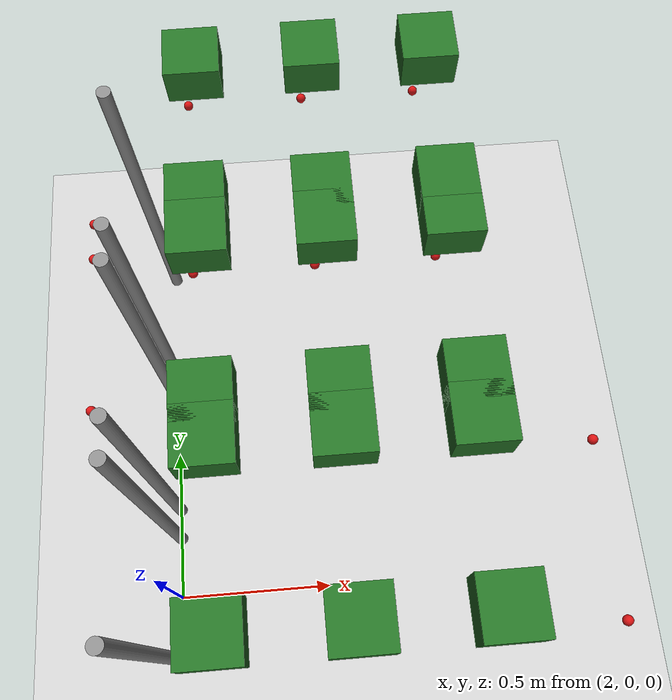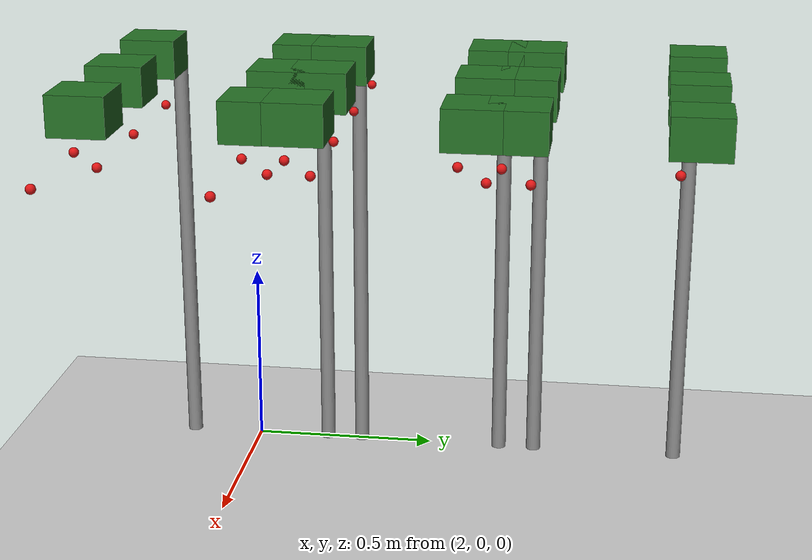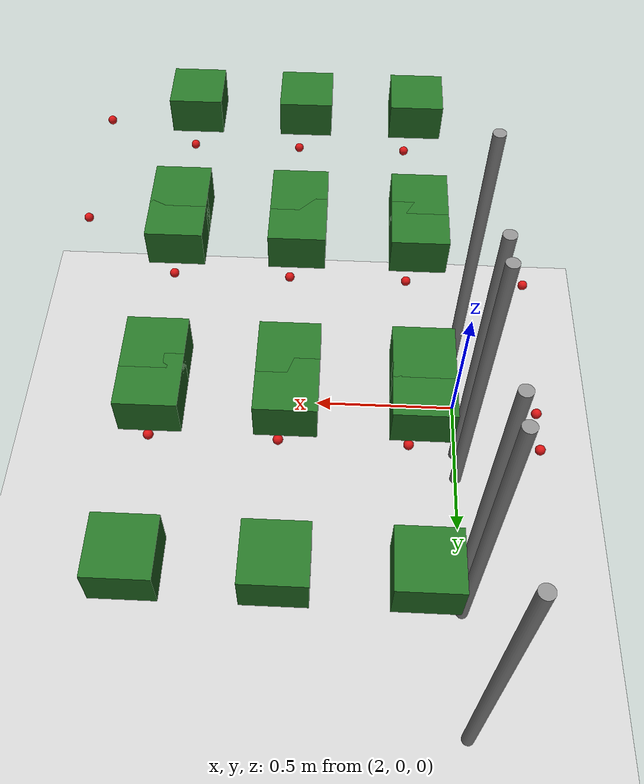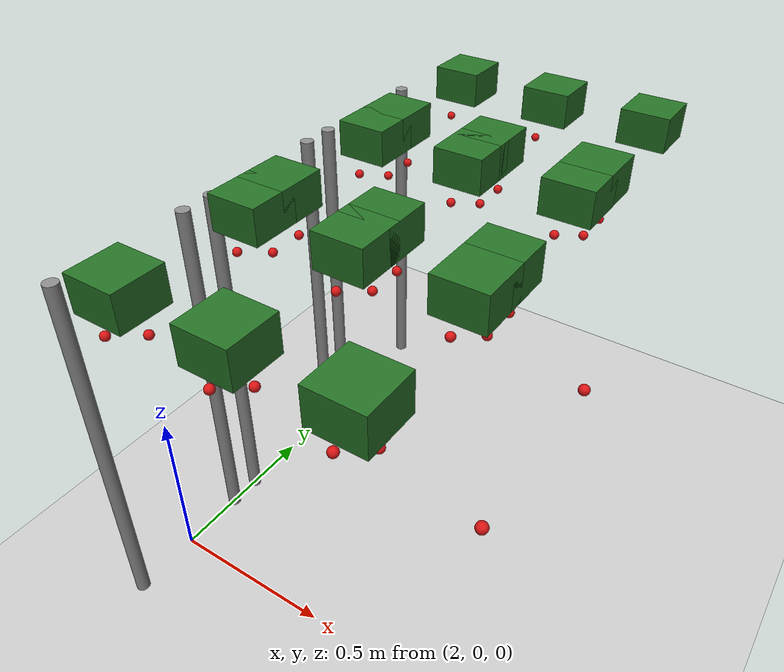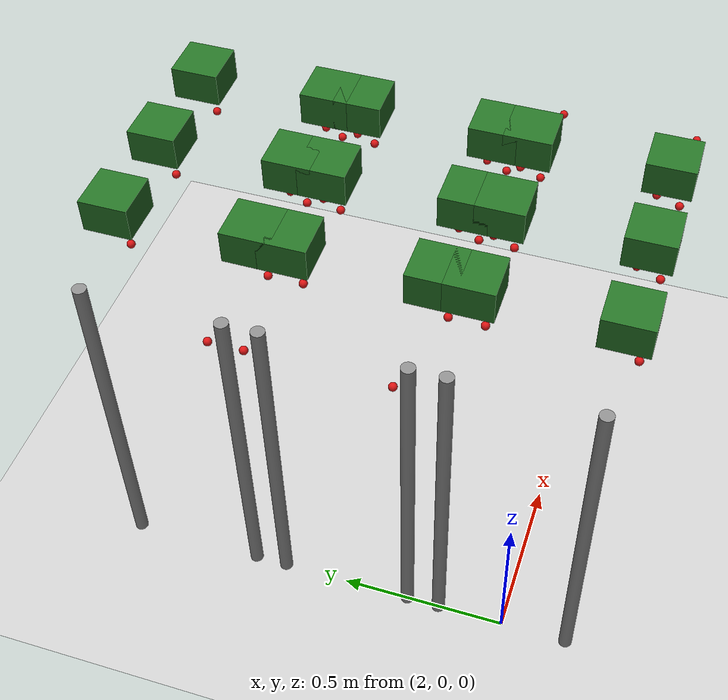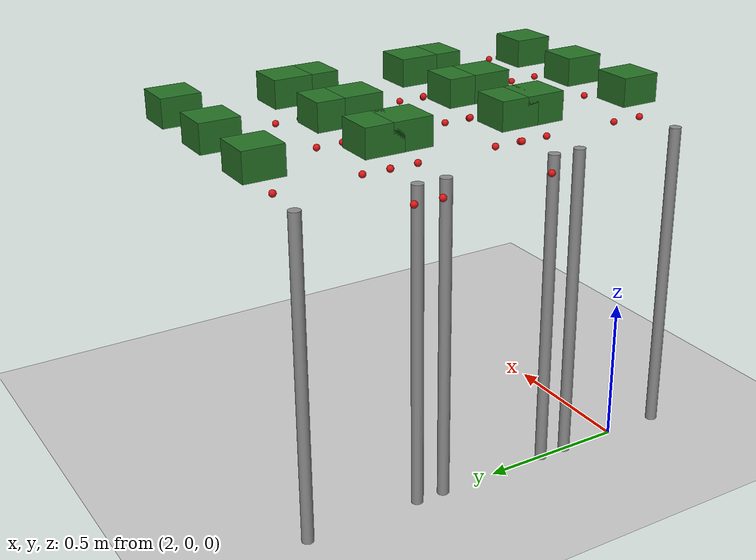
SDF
<sdf version="1.7">
 <world name="irish_polytunnel">
  <include><uri>model://sun</uri></include>
  <include><uri>model://ground_plane</uri></include>
  <model name="row0_L_post1">
   <static>true</static>
   <pose>2.000 0.200 0.550 0 0 0</pose>
   <link name="link">
    <collision name="collision">
     <geometry><cylinder><radius>0.02</radius><length>1.100</length></cylinder></geometry>
    </collision>
    <visual name="visual">
     <geometry><cylinder><radius>0.02</radius><length>1.100</length></cylinder></geometry>
     <material><ambient>0.5 0.5 0.5 1</ambient><diffuse>0.55 0.55 0.55 1</diffuse></material>
    </visual>
   </link>
  </model>
  <model name="row0_L_plant7_foliage">
   <static>true</static>
   <pose>2.250 0.200 1.180 0 0 0</pose>
   <link name="link">
    <visual name="visual">
     <geometry><box><size>0.14 0.14 0.10</size></box></geometry>
     <material><ambient>0.10 0.35 0.10 1</ambient><diffuse>0.15 0.45 0.15 1</diffuse></material>
    </visual>
   </link>
  </model>
  <model name="row0_L_plant7_berry_0">
   <static>true</static>
   <pose>2.220 0.160 1.070 0 0 0</pose>
   <link name="link">
    <visual name="visual">
     <geometry><sphere><radius>0.012</radius></sphere></geometry>
     <material><ambient>0.75 0.05 0.05 1</ambient><diffuse>0.85 0.08 0.08 1</diffuse></material>
    </visual>
   </link>
  </model>
  <model name="row0_L_plant7_berry_1">
   <static>true</static>
   <pose>2.270 0.230 1.050 0 0 0</pose>
   <link name="link">
    <visual name="visual">
     <geometry><sphere><radius>0.012</radius></sphere></geometry>
     <material><ambient>0.75 0.05 0.05 1</ambient><diffuse>0.85 0.08 0.08 1</diffuse></material>
    </visual>
   </link>
  </model>
  <model name="row0_L_plant8_foliage">
   <static>true</static>
   <pose>2.550 0.200 1.180 0 0 0</pose>
   <link name="link">
    <visual name="visual">
     <geometry><box><size>0.14 0.14 0.10</size></box></geometry>
     <material><ambient>0.10 0.35 0.10 1</ambient><diffuse>0.15 0.45 0.15 1</diffuse></material>
    </visual>
   </link>
  </model>
  <model name="row0_L_plant8_berry_0">
   <static>true</static>
   <pose>2.520 0.160 1.070 0 0 0</pose>
   <link name="link">
    <visual name="visual">
     <geometry><sphere><radius>0.012</radius></sphere></geometry>
     <material><ambient>0.75 0.05 0.05 1</ambient><diffuse>0.85 0.08 0.08 1</diffuse></material>
    </visual>
   </link>
  </model>
  <model name="row0_L_plant8_berry_1">
   <static>true</static>
   <pose>2.570 0.230 1.050 0 0 0</pose>
   <link name="link">
    <visual name="visual">
     <geometry><sphere><radius>0.012</radius></sphere></geometry>
     <material><ambient>0.75 0.05 0.05 1</ambient><diffuse>0.85 0.08 0.08 1</diffuse></material>
    </visual>
   </link>
  </model>
  <model name="row0_L_plant9_foliage">
   <static>true</static>
   <pose>2.850 0.200 1.180 0 0 0</pose>
   <link name="link">
    <visual name="visual">
     <geometry><box><size>0.14 0.14 0.10</size></box></geometry>
     <material><ambient>0.10 0.35 0.10 1</ambient><diffuse>0.15 0.45 0.15 1</diffuse></material>
    </visual>
   </link>
  </model>
  <model name="row0_L_plant9_berry_0">
   <static>true</static>
   <pose>2.820 0.160 1.070 0 0 0</pose>
   <link name="link">
    <visual name="visual">
     <geometry><sphere><radius>0.012</radius></sphere></geometry>
     <material><ambient>0.75 0.05 0.05 1</ambient><diffuse>0.85 0.08 0.08 1</diffuse></material>
    </visual>
   </link>
  </model>
  <model name="row0_L_plant9_berry_1">
   <static>true</static>
   <pose>2.870 0.230 1.050 0 0 0</pose>
   <link name="link">
    <visual name="visual">
     <geometry><sphere><radius>0.012</radius></sphere></geometry>
     <material><ambient>0.75 0.05 0.05 1</ambient><diffuse>0.85 0.08 0.08 1</diffuse></material>
    </visual>
   </link>
  </model>
  <model name="row0_L_plant10_berry_0">
   <static>true</static>
   <pose>3.120 0.160 1.070 0 0 0</pose>
   <link name="link">
    <visual name="visual">
     <geometry><sphere><radius>0.012</radius></sphere></geometry>
     <material><ambient>0.75 0.05 0.05 1</ambient><diffuse>0.85 0.08 0.08 1</diffuse></material>
    </visual>
   </link>
  </model>
  <model name="row0_R_post1">
   <static>true</static>
   <pose>2.000 -0.200 0.550 0 0 0</pose>
   <link name="link">
    <collision name="collision">
     <geometry><cylinder><radius>0.02</radius><length>1.100</length></cylinder></geometry>
    </collision>
    <visual name="visual">
     <geometry><cylinder><radius>0.02</radius><length>1.100</length></cylinder></geometry>
     <material><ambient>0.5 0.5 0.5 1</ambient><diffuse>0.55 0.55 0.55 1</diffuse></material>
    </visual>
   </link>
  </model>
  <model name="row0_R_plant7_foliage">
   <static>true</static>
   <pose>2.250 -0.200 1.180 0 0 0</pose>
   <link name="link">
    <visual name="visual">
     <geometry><box><size>0.14 0.14 0.10</size></box></geometry>
     <material><ambient>0.10 0.35 0.10 1</ambient><diffuse>0.15 0.45 0.15 1</diffuse></material>
    </visual>
   </link>
  </model>
  <model name="row0_R_plant7_berry_0">
   <static>true</static>
   <pose>2.220 -0.240 1.070 0 0 0</pose>
   <link name="link">
    <visual name="visual">
     <geometry><sphere><radius>0.012</radius></sphere></geometry>
     <material><ambient>0.75 0.05 0.05 1</ambient><diffuse>0.85 0.08 0.08 1</diffuse></material>
    </visual>
   </link>
  </model>
  <model name="row0_R_plant7_berry_1">
   <static>true</static>
   <pose>2.270 -0.170 1.050 0 0 0</pose>
   <link name="link">
    <visual name="visual">
     <geometry><sphere><radius>0.012</radius></sphere></geometry>
     <material><ambient>0.75 0.05 0.05 1</ambient><diffuse>0.85 0.08 0.08 1</diffuse></material>
    </visual>
   </link>
  </model>
  <model name="row0_R_plant8_foliage">
   <static>true</static>
   <pose>2.550 -0.200 1.180 0 0 0</pose>
   <link name="link">
    <visual name="visual">
     <geometry><box><size>0.14 0.14 0.10</size></box></geometry>
     <material><ambient>0.10 0.35 0.10 1</ambient><diffuse>0.15 0.45 0.15 1</diffuse></material>
    </visual>
   </link>
  </model>
  <model name="row0_R_plant8_berry_0">
   <static>true</static>
   <pose>2.520 -0.240 1.070 0 0 0</pose>
   <link name="link">
    <visual name="visual">
     <geometry><sphere><radius>0.012</radius></sphere></geometry>
     <material><ambient>0.75 0.05 0.05 1</ambient><diffuse>0.85 0.08 0.08 1</diffuse></material>
    </visual>
   </link>
  </model>
  <model name="row0_R_plant8_berry_1">
   <static>true</static>
   <pose>2.570 -0.170 1.050 0 0 0</pose>
   <link name="link">
    <visual name="visual">
     <geometry><sphere><radius>0.012</radius></sphere></geometry>
     <material><ambient>0.75 0.05 0.05 1</ambient><diffuse>0.85 0.08 0.08 1</diffuse></material>
    </visual>
   </link>
  </model>
  <model name="row0_R_plant9_foliage">
   <static>true</static>
   <pose>2.850 -0.200 1.180 0 0 0</pose>
   <link name="link">
    <visual name="visual">
     <geometry><box><size>0.14 0.14 0.10</size></box></geometry>
     <material><ambient>0.10 0.35 0.10 1</ambient><diffuse>0.15 0.45 0.15 1</diffuse></material>
    </visual>
   </link>
  </model>
  <model name="row0_R_plant9_berry_0">
   <static>true</static>
   <pose>2.820 -0.240 1.070 0 0 0</pose>
   <link name="link">
    <visual name="visual">
     <geometry><sphere><radius>0.012</radius></sphere></geometry>
     <material><ambient>0.75 0.05 0.05 1</ambient><diffuse>0.85 0.08 0.08 1</diffuse></material>
    </visual>
   </link>
  </model>
  <model name="row0_R_plant9_berry_1">
   <static>true</static>
   <pose>2.870 -0.170 1.050 0 0 0</pose>
   <link name="link">
    <visual name="visual">
     <geometry><sphere><radius>0.012</radius></sphere></geometry>
     <material><ambient>0.75 0.05 0.05 1</ambient><diffuse>0.85 0.08 0.08 1</diffuse></material>
    </visual>
   </link>
  </model>
  <model name="row0_R_plant10_berry_0">
   <static>true</static>
   <pose>3.120 -0.240 1.070 0 0 0</pose>
   <link name="link">
    <visual name="visual">
     <geometry><sphere><radius>0.012</radius></sphere></geometry>
     <material><ambient>0.75 0.05 0.05 1</ambient><diffuse>0.85 0.08 0.08 1</diffuse></material>
    </visual>
   </link>
  </model>
  <model name="row1_L_post1">
   <static>true</static>
   <pose>2.000 0.700 0.550 0 0 0</pose>
   <link name="link">
    <collision name="collision">
     <geometry><cylinder><radius>0.02</radius><length>1.100</length></cylinder></geometry>
    </collision>
    <visual name="visual">
     <geometry><cylinder><radius>0.02</radius><length>1.100</length></cylinder></geometry>
     <material><ambient>0.5 0.5 0.5 1</ambient><diffuse>0.55 0.55 0.55 1</diffuse></material>
    </visual>
   </link>
  </model>
  <model name="row1_L_plant6_berry_1">
   <static>true</static>
   <pose>1.970 0.730 1.050 0 0 0</pose>
   <link name="link">
    <visual name="visual">
     <geometry><sphere><radius>0.012</radius></sphere></geometry>
     <material><ambient>0.75 0.05 0.05 1</ambient><diffuse>0.85 0.08 0.08 1</diffuse></material>
    </visual>
   </link>
  </model>
  <model name="row1_L_plant7_foliage">
   <static>true</static>
   <pose>2.250 0.700 1.180 0 0 0</pose>
   <link name="link">
    <visual name="visual">
     <geometry><box><size>0.14 0.14 0.10</size></box></geometry>
     <material><ambient>0.10 0.35 0.10 1</ambient><diffuse>0.15 0.45 0.15 1</diffuse></material>
    </visual>
   </link>
  </model>
  <model name="row1_L_plant7_berry_0">
   <static>true</static>
   <pose>2.220 0.660 1.070 0 0 0</pose>
   <link name="link">
    <visual name="visual">
     <geometry><sphere><radius>0.012</radius></sphere></geometry>
     <material><ambient>0.75 0.05 0.05 1</ambient><diffuse>0.85 0.08 0.08 1</diffuse></material>
    </visual>
   </link>
  </model>
  <model name="row1_L_plant7_berry_1">
   <static>true</static>
   <pose>2.270 0.730 1.050 0 0 0</pose>
   <link name="link">
    <visual name="visual">
     <geometry><sphere><radius>0.012</radius></sphere></geometry>
     <material><ambient>0.75 0.05 0.05 1</ambient><diffuse>0.85 0.08 0.08 1</diffuse></material>
    </visual>
   </link>
  </model>
  <model name="row1_L_plant8_foliage">
   <static>true</static>
   <pose>2.550 0.700 1.180 0 0 0</pose>
   <link name="link">
    <visual name="visual">
     <geometry><box><size>0.14 0.14 0.10</size></box></geometry>
     <material><ambient>0.10 0.35 0.10 1</ambient><diffuse>0.15 0.45 0.15 1</diffuse></material>
    </visual>
   </link>
  </model>
  <model name="row1_L_plant8_berry_0">
   <static>true</static>
   <pose>2.520 0.660 1.070 0 0 0</pose>
   <link name="link">
    <visual name="visual">
     <geometry><sphere><radius>0.012</radius></sphere></geometry>
     <material><ambient>0.75 0.05 0.05 1</ambient><diffuse>0.85 0.08 0.08 1</diffuse></material>
    </visual>
   </link>
  </model>
  <model name="row1_L_plant8_berry_1">
   <static>true</static>
   <pose>2.570 0.730 1.050 0 0 0</pose>
   <link name="link">
    <visual name="visual">
     <geometry><sphere><radius>0.012</radius></sphere></geometry>
     <material><ambient>0.75 0.05 0.05 1</ambient><diffuse>0.85 0.08 0.08 1</diffuse></material>
    </visual>
   </link>
  </model>
  <model name="row1_L_plant9_foliage">
   <static>true</static>
   <pose>2.850 0.700 1.180 0 0 0</pose>
   <link name="link">
    <visual name="visual">
     <geometry><box><size>0.14 0.14 0.10</size></box></geometry>
     <material><ambient>0.10 0.35 0.10 1</ambient><diffuse>0.15 0.45 0.15 1</diffuse></material>
    </visual>
   </link>
  </model>
  <model name="row1_L_plant9_berry_0">
   <static>true</static>
   <pose>2.820 0.660 1.070 0 0 0</pose>
   <link name="link">
    <visual name="visual">
     <geometry><sphere><radius>0.012</radius></sphere></geometry>
     <material><ambient>0.75 0.05 0.05 1</ambient><diffuse>0.85 0.08 0.08 1</diffuse></material>
    </visual>
   </link>
  </model>
  <model name="row1_L_plant9_berry_1">
   <static>true</static>
   <pose>2.870 0.730 1.050 0 0 0</pose>
   <link name="link">
    <visual name="visual">
     <geometry><sphere><radius>0.012</radius></sphere></geometry>
     <material><ambient>0.75 0.05 0.05 1</ambient><diffuse>0.85 0.08 0.08 1</diffuse></material>
    </visual>
   </link>
  </model>
  <model name="row1_R_post1">
   <static>true</static>
   <pose>2.000 0.300 0.550 0 0 0</pose>
   <link name="link">
    <collision name="collision">
     <geometry><cylinder><radius>0.02</radius><length>1.100</length></cylinder></geometry>
    </collision>
    <visual name="visual">
     <geometry><cylinder><radius>0.02</radius><length>1.100</length></cylinder></geometry>
     <material><ambient>0.5 0.5 0.5 1</ambient><diffuse>0.55 0.55 0.55 1</diffuse></material>
    </visual>
   </link>
  </model>
  <model name="row1_R_plant6_berry_1">
   <static>true</static>
   <pose>1.970 0.330 1.050 0 0 0</pose>
   <link name="link">
    <visual name="visual">
     <geometry><sphere><radius>0.012</radius></sphere></geometry>
     <material><ambient>0.75 0.05 0.05 1</ambient><diffuse>0.85 0.08 0.08 1</diffuse></material>
    </visual>
   </link>
  </model>
  <model name="row1_R_plant7_foliage">
   <static>true</static>
   <pose>2.250 0.300 1.180 0 0 0</pose>
   <link name="link">
    <visual name="visual">
     <geometry><box><size>0.14 0.14 0.10</size></box></geometry>
     <material><ambient>0.10 0.35 0.10 1</ambient><diffuse>0.15 0.45 0.15 1</diffuse></material>
    </visual>
   </link>
  </model>
  <model name="row1_R_plant7_berry_0">
   <static>true</static>
   <pose>2.220 0.260 1.070 0 0 0</pose>
   <link name="link">
    <visual name="visual">
     <geometry><sphere><radius>0.012</radius></sphere></geometry>
     <material><ambient>0.75 0.05 0.05 1</ambient><diffuse>0.85 0.08 0.08 1</diffuse></material>
    </visual>
   </link>
  </model>
  <model name="row1_R_plant7_berry_1">
   <static>true</static>
   <pose>2.270 0.330 1.050 0 0 0</pose>
   <link name="link">
    <visual name="visual">
     <geometry><sphere><radius>0.012</radius></sphere></geometry>
     <material><ambient>0.75 0.05 0.05 1</ambient><diffuse>0.85 0.08 0.08 1</diffuse></material>
    </visual>
   </link>
  </model>
  <model name="row1_R_plant8_foliage">
   <static>true</static>
   <pose>2.550 0.300 1.180 0 0 0</pose>
   <link name="link">
    <visual name="visual">
     <geometry><box><size>0.14 0.14 0.10</size></box></geometry>
     <material><ambient>0.10 0.35 0.10 1</ambient><diffuse>0.15 0.45 0.15 1</diffuse></material>
    </visual>
   </link>
  </model>
  <model name="row1_R_plant8_berry_0">
   <static>true</static>
   <pose>2.520 0.260 1.070 0 0 0</pose>
   <link name="link">
    <visual name="visual">
     <geometry><sphere><radius>0.012</radius></sphere></geometry>
     <material><ambient>0.75 0.05 0.05 1</ambient><diffuse>0.85 0.08 0.08 1</diffuse></material>
    </visual>
   </link>
  </model>
  <model name="row1_R_plant8_berry_1">
   <static>true</static>
   <pose>2.570 0.330 1.050 0 0 0</pose>
   <link name="link">
    <visual name="visual">
     <geometry><sphere><radius>0.012</radius></sphere></geometry>
     <material><ambient>0.75 0.05 0.05 1</ambient><diffuse>0.85 0.08 0.08 1</diffuse></material>
    </visual>
   </link>
  </model>
  <model name="row1_R_plant9_foliage">
   <static>true</static>
   <pose>2.850 0.300 1.180 0 0 0</pose>
   <link name="link">
    <visual name="visual">
     <geometry><box><size>0.14 0.14 0.10</size></box></geometry>
     <material><ambient>0.10 0.35 0.10 1</ambient><diffuse>0.15 0.45 0.15 1</diffuse></material>
    </visual>
   </link>
  </model>
  <model name="row1_R_plant9_berry_0">
   <static>true</static>
   <pose>2.820 0.260 1.070 0 0 0</pose>
   <link name="link">
    <visual name="visual">
     <geometry><sphere><radius>0.012</radius></sphere></geometry>
     <material><ambient>0.75 0.05 0.05 1</ambient><diffuse>0.85 0.08 0.08 1</diffuse></material>
    </visual>
   </link>
  </model>
  <model name="row1_R_plant9_berry_1">
   <static>true</static>
   <pose>2.870 0.330 1.050 0 0 0</pose>
   <link name="link">
    <visual name="visual">
     <geometry><sphere><radius>0.012</radius></sphere></geometry>
     <material><ambient>0.75 0.05 0.05 1</ambient><diffuse>0.85 0.08 0.08 1</diffuse></material>
    </visual>
   </link>
  </model>
  <model name="row2_L_post1">
   <static>true</static>
   <pose>2.000 1.200 0.550 0 0 0</pose>
   <link name="link">
    <collision name="collision">
     <geometry><cylinder><radius>0.02</radius><length>1.100</length></cylinder></geometry>
    </collision>
    <visual name="visual">
     <geometry><cylinder><radius>0.02</radius><length>1.100</length></cylinder></geometry>
     <material><ambient>0.5 0.5 0.5 1</ambient><diffuse>0.55 0.55 0.55 1</diffuse></material>
    </visual>
   </link>
  </model>
  <model name="row2_L_plant7_foliage">
   <static>true</static>
   <pose>2.250 1.200 1.180 0 0 0</pose>
   <link name="link">
    <visual name="visual">
     <geometry><box><size>0.14 0.14 0.10</size></box></geometry>
     <material><ambient>0.10 0.35 0.10 1</ambient><diffuse>0.15 0.45 0.15 1</diffuse></material>
    </visual>
   </link>
  </model>
  <model name="row2_L_plant7_berry_0">
   <static>true</static>
   <pose>2.220 1.160 1.070 0 0 0</pose>
   <link name="link">
    <visual name="visual">
     <geometry><sphere><radius>0.012</radius></sphere></geometry>
     <material><ambient>0.75 0.05 0.05 1</ambient><diffuse>0.85 0.08 0.08 1</diffuse></material>
    </visual>
   </link>
  </model>
  <model name="row2_L_plant8_foliage">
   <static>true</static>
   <pose>2.550 1.200 1.180 0 0 0</pose>
   <link name="link">
    <visual name="visual">
     <geometry><box><size>0.14 0.14 0.10</size></box></geometry>
     <material><ambient>0.10 0.35 0.10 1</ambient><diffuse>0.15 0.45 0.15 1</diffuse></material>
    </visual>
   </link>
  </model>
  <model name="row2_L_plant8_berry_0">
   <static>true</static>
   <pose>2.520 1.160 1.070 0 0 0</pose>
   <link name="link">
    <visual name="visual">
     <geometry><sphere><radius>0.012</radius></sphere></geometry>
     <material><ambient>0.75 0.05 0.05 1</ambient><diffuse>0.85 0.08 0.08 1</diffuse></material>
    </visual>
   </link>
  </model>
  <model name="row2_L_plant9_foliage">
   <static>true</static>
   <pose>2.850 1.200 1.180 0 0 0</pose>
   <link name="link">
    <visual name="visual">
     <geometry><box><size>0.14 0.14 0.10</size></box></geometry>
     <material><ambient>0.10 0.35 0.10 1</ambient><diffuse>0.15 0.45 0.15 1</diffuse></material>
    </visual>
   </link>
  </model>
  <model name="row2_L_plant9_berry_0">
   <static>true</static>
   <pose>2.820 1.160 1.070 0 0 0</pose>
   <link name="link">
    <visual name="visual">
     <geometry><sphere><radius>0.012</radius></sphere></geometry>
     <material><ambient>0.75 0.05 0.05 1</ambient><diffuse>0.85 0.08 0.08 1</diffuse></material>
    </visual>
   </link>
  </model>
  <model name="row2_R_post1">
   <static>true</static>
   <pose>2.000 0.800 0.550 0 0 0</pose>
   <link name="link">
    <collision name="collision">
     <geometry><cylinder><radius>0.02</radius><length>1.100</length></cylinder></geometry>
    </collision>
    <visual name="visual">
     <geometry><cylinder><radius>0.02</radius><length>1.100</length></cylinder></geometry>
     <material><ambient>0.5 0.5 0.5 1</ambient><diffuse>0.55 0.55 0.55 1</diffuse></material>
    </visual>
   </link>
  </model>
  <model name="row2_R_plant6_berry_1">
   <static>true</static>
   <pose>1.970 0.830 1.050 0 0 0</pose>
   <link name="link">
    <visual name="visual">
     <geometry><sphere><radius>0.012</radius></sphere></geometry>
     <material><ambient>0.75 0.05 0.05 1</ambient><diffuse>0.85 0.08 0.08 1</diffuse></material>
    </visual>
   </link>
  </model>
  <model name="row2_R_plant7_foliage">
   <static>true</static>
   <pose>2.250 0.800 1.180 0 0 0</pose>
   <link name="link">
    <visual name="visual">
     <geometry><box><size>0.14 0.14 0.10</size></box></geometry>
     <material><ambient>0.10 0.35 0.10 1</ambient><diffuse>0.15 0.45 0.15 1</diffuse></material>
    </visual>
   </link>
  </model>
  <model name="row2_R_plant7_berry_0">
   <static>true</static>
   <pose>2.220 0.760 1.070 0 0 0</pose>
   <link name="link">
    <visual name="visual">
     <geometry><sphere><radius>0.012</radius></sphere></geometry>
     <material><ambient>0.75 0.05 0.05 1</ambient><diffuse>0.85 0.08 0.08 1</diffuse></material>
    </visual>
   </link>
  </model>
  <model name="row2_R_plant7_berry_1">
   <static>true</static>
   <pose>2.270 0.830 1.050 0 0 0</pose>
   <link name="link">
    <visual name="visual">
     <geometry><sphere><radius>0.012</radius></sphere></geometry>
     <material><ambient>0.75 0.05 0.05 1</ambient><diffuse>0.85 0.08 0.08 1</diffuse></material>
    </visual>
   </link>
  </model>
  <model name="row2_R_plant8_foliage">
   <static>true</static>
   <pose>2.550 0.800 1.180 0 0 0</pose>
   <link name="link">
    <visual name="visual">
     <geometry><box><size>0.14 0.14 0.10</size></box></geometry>
     <material><ambient>0.10 0.35 0.10 1</ambient><diffuse>0.15 0.45 0.15 1</diffuse></material>
    </visual>
   </link>
  </model>
  <model name="row2_R_plant8_berry_0">
   <static>true</static>
   <pose>2.520 0.760 1.070 0 0 0</pose>
   <link name="link">
    <visual name="visual">
     <geometry><sphere><radius>0.012</radius></sphere></geometry>
     <material><ambient>0.75 0.05 0.05 1</ambient><diffuse>0.85 0.08 0.08 1</diffuse></material>
    </visual>
   </link>
  </model>
  <model name="row2_R_plant8_berry_1">
   <static>true</static>
   <pose>2.570 0.830 1.050 0 0 0</pose>
   <link name="link">
    <visual name="visual">
     <geometry><sphere><radius>0.012</radius></sphere></geometry>
     <material><ambient>0.75 0.05 0.05 1</ambient><diffuse>0.85 0.08 0.08 1</diffuse></material>
    </visual>
   </link>
  </model>
  <model name="row2_R_plant9_foliage">
   <static>true</static>
   <pose>2.850 0.800 1.180 0 0 0</pose>
   <link name="link">
    <visual name="visual">
     <geometry><box><size>0.14 0.14 0.10</size></box></geometry>
     <material><ambient>0.10 0.35 0.10 1</ambient><diffuse>0.15 0.45 0.15 1</diffuse></material>
    </visual>
   </link>
  </model>
  <model name="row2_R_plant9_berry_0">
   <static>true</static>
   <pose>2.820 0.760 1.070 0 0 0</pose>
   <link name="link">
    <visual name="visual">
     <geometry><sphere><radius>0.012</radius></sphere></geometry>
     <material><ambient>0.75 0.05 0.05 1</ambient><diffuse>0.85 0.08 0.08 1</diffuse></material>
    </visual>
   </link>
  </model>
  <model name="row2_R_plant9_berry_1">
   <static>true</static>
   <pose>2.870 0.830 1.050 0 0 0</pose>
   <link name="link">
    <visual name="visual">
     <geometry><sphere><radius>0.012</radius></sphere></geometry>
     <material><ambient>0.75 0.05 0.05 1</ambient><diffuse>0.85 0.08 0.08 1</diffuse></material>
    </visual>
   </link>
  </model>
 </world>
</sdf>
